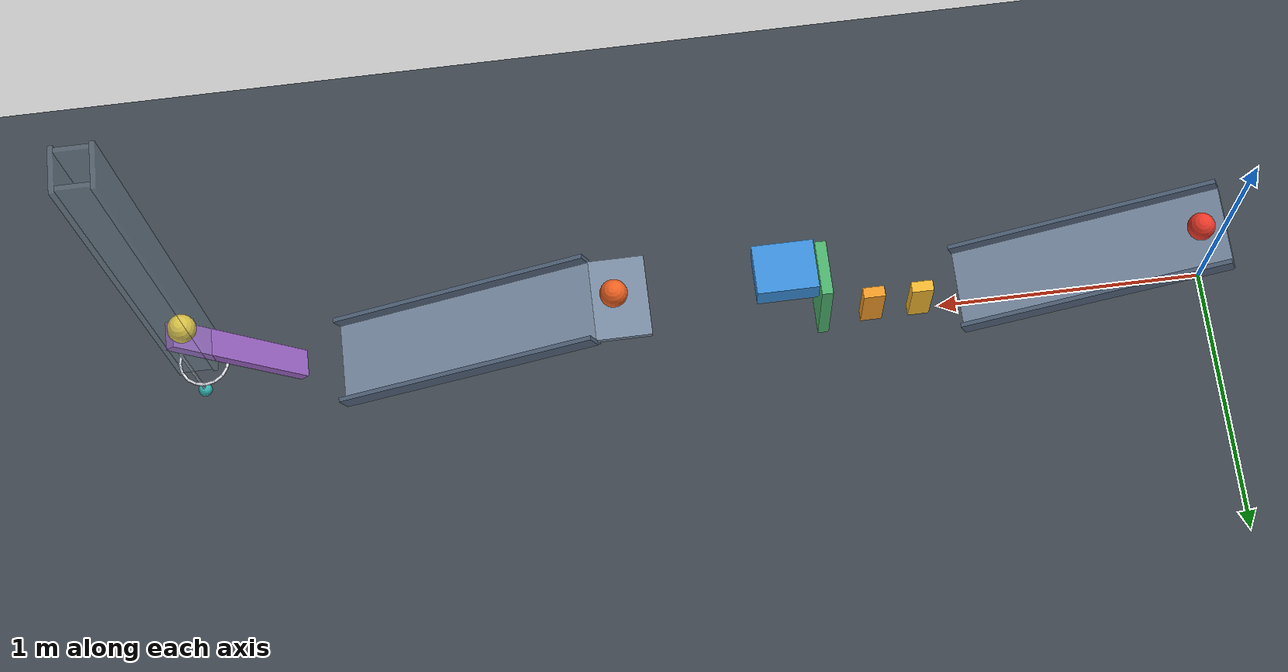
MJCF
<mujoco model="passive_chain_reaction">
  <compiler angle="degree" autolimits="true" inertiafromgeom="true"/>
  <option timestep="0.002" gravity="0 0 -9.81" integrator="implicitfast" solver="Newton" iterations="100" tolerance="1e-9"/>
  <size njmax="2000" nconmax="500"/>
  <statistic center="2 0 0.6" extent="4.5"/>

  <!-- MuJoCo has no exact restitution attribute. A damping ratio of 0.6901 approximates e = 0.05 for a linear impact. -->
  <!-- Friction components are sliding, torsional, and rolling. -->
  <!-- Positive flap rotation tips its upper end toward +x. Positive lever rotation lowers its left end. -->

  <worldbody>
    <light name="main_light" pos="1 -3 6" dir="0 0 -1" directional="true"/>
    <camera name="overview" pos="5 -7 4" xyaxes="0.919 0.394 0 -0.185 0.432 0.883"/>
    <geom name="floor" type="plane" size="8 4 0.1" friction="0.70 0.005 0.005" condim="6" solref="0.008 0.6901" rgba="0.24 0.27 0.30 1"/>

    <!-- Ramp surfaces run from z = 0.49202014 down to z = 0.15. -->
    <body name="ramp1" pos="0 0 0.49202014">
      <geom name="ramp1_surface" type="box" pos="0.46300591 0 -0.18980392" euler="0 20 0" size="0.50 0.15 0.02" friction="0.70 0.005 0.005" condim="6" solref="0.008 0.6901" rgba="0.48 0.55 0.64 1"/>
      <geom name="ramp1_left_rail" type="box" pos="0.47668671 0.155 -0.15221622" euler="0 20 0" size="0.50 0.008 0.035" friction="0.70 0.005 0.005" condim="6" solref="0.008 0.6901" rgba="0.32 0.39 0.48 1"/>
      <geom name="ramp1_right_rail" type="box" pos="0.47668671 -0.155 -0.15221622" euler="0 20 0" size="0.50 0.008 0.035" friction="0.70 0.005 0.005" condim="6" solref="0.008 0.6901" rgba="0.32 0.39 0.48 1"/>
    </body>

    <body name="ball1" pos="0.09227642 0 0.51164316">
      <freejoint name="ball1_free"/>
      <geom name="ball1_sphere" type="sphere" size="0.05" mass="0.20" friction="0.70 0.005 0.005" condim="6" solref="0.008 0.6901" rgba="0.92 0.22 0.16 1"/>
    </body>

    <body name="domino1" pos="1.07969262 0 0.12">
      <freejoint name="domino1_free"/>
      <geom name="domino1_block" type="box" size="0.04 0.02 0.12" mass="0.25" friction="0.70 0.005 0.005" condim="6" solref="0.008 0.6901" rgba="0.95 0.72 0.19 1"/>
    </body>

    <body name="domino2" pos="1.25969262 0 0.12">
      <freejoint name="domino2_free"/>
      <geom name="domino2_block" type="box" size="0.04 0.02 0.12" mass="0.25" friction="0.70 0.005 0.005" condim="6" solref="0.008 0.6901" rgba="0.95 0.61 0.15 1"/>
    </body>

    <!-- Bottom-hinged panel: the domino strikes its lower half, and gravity assists the ensuing swing. -->
    <body name="flap1" pos="1.45969262 0 0.15">
      <joint name="flap1_hinge" type="hinge" axis="0 1 0" range="0 65" damping="0.04" armature="0" solreflimit="0.004 1" solimplimit="0.99 0.999 0.0001"/>
      <geom name="flap1_panel" type="box" pos="0 0 0.20" size="0.02 0.10 0.20" mass="0.30" friction="0.70 0.005 0.005" condim="6" solref="0.008 0.6901" rgba="0.30 0.70 0.43 1"/>
    </body>

    <!-- The slide is an ideal horizontal rail; the cart clears the second ramp's starting shelf. -->
    <body name="cart1" pos="1.59969262 0 0.555">
      <joint name="cart1_slide" type="slide" axis="1 0 0" range="0 0.68" damping="0.20" armature="0" solreflimit="0.004 1" solimplimit="0.99 0.999 0.0001"/>
      <geom name="cart1_chassis" type="box" size="0.11 0.09 0.05" mass="0.50" friction="0.70 0.005 0.005" condim="6" solref="0.008 0.6901" rgba="0.23 0.56 0.86 1"/>
    </body>

    <!-- A level starting shelf keeps ball2 stationary until cart1 arrives. -->
    <body name="ramp2" pos="2.28969262 0 0.49202014">
      <geom name="ramp2_surface" type="box" pos="0.46300591 0 -0.18980392" euler="0 20 0" size="0.50 0.15 0.02" friction="0.70 0.005 0.005" condim="6" solref="0.008 0.6901" rgba="0.48 0.55 0.64 1"/>
      <geom name="ramp2_start_shelf" type="box" pos="-0.10 0 -0.01" size="0.10 0.15 0.01" friction="0.70 0.005 0.005" condim="6" solref="0.008 0.6901" rgba="0.48 0.55 0.64 1"/>
      <geom name="ramp2_left_rail" type="box" pos="0.47668671 0.155 -0.15221622" euler="0 20 0" size="0.50 0.008 0.035" friction="0.70 0.005 0.005" condim="6" solref="0.008 0.6901" rgba="0.32 0.39 0.48 1"/>
      <geom name="ramp2_right_rail" type="box" pos="0.47668671 -0.155 -0.15221622" euler="0 20 0" size="0.50 0.008 0.035" friction="0.70 0.005 0.005" condim="6" solref="0.008 0.6901" rgba="0.32 0.39 0.48 1"/>
    </body>

    <body name="ball2" pos="2.20969262 0 0.54202014">
      <freejoint name="ball2_free"/>
      <geom name="ball2_sphere" type="sphere" size="0.05" mass="0.20" friction="0.70 0.005 0.005" condim="6" solref="0.008 0.6901" rgba="0.93 0.38 0.13 1"/>
    </body>

    <!-- The lever begins inclined at 50 degrees and has a further 45 degrees of travel. -->
    <!-- This keeps its lowered left end above the floor and its carried ball above the ring and bob. -->
    <body name="lever1" pos="3.55754241 0 0.41981333" euler="0 -50 0">
      <joint name="lever1_hinge" type="hinge" axis="0 -1 0" range="0 45" damping="0.04" armature="0" solreflimit="0.004 1" solimplimit="0.99 0.999 0.0001"/>
      <geom name="lever1_beam" type="box" size="0.30 0.05 0.02" mass="0.50" friction="0.70 0.005 0.005" condim="6" solref="0.008 0.6901" rgba="0.61 0.39 0.77 1"/>
    </body>

    <body name="ball3" pos="3.69675558 0 0.69462180">
      <freejoint name="ball3_free"/>
      <geom name="ball3_sphere" type="sphere" size="0.05" mass="0.20" contype="1" conaffinity="3" friction="0.70 0.005 0.005" condim="6" solref="0.008 0.6901" rgba="0.96 0.82 0.22 1"/>
    </body>

    <!-- Passive guide walls constrain only ball3, converting the lever's thrust into vertical travel. -->
    <!-- They end 0.10 m above the ring, leaving the ring crossing and pendulum impact unobstructed. -->
    <body name="ball3_guide" pos="3.69675558 0 1.24962180">
      <geom name="ball3_guide_left" type="box" pos="-0.060 0 0" size="0.008 0.075 0.805" contype="2" conaffinity="0" friction="0.70 0.005 0.005" condim="6" solref="0.008 0.6901" rgba="0.65 0.79 0.88 0.20"/>
      <geom name="ball3_guide_right" type="box" pos="0.060 0 0" size="0.008 0.075 0.805" contype="2" conaffinity="0" friction="0.70 0.005 0.005" condim="6" solref="0.008 0.6901" rgba="0.65 0.79 0.88 0.20"/>
      <geom name="ball3_guide_front" type="box" pos="0 -0.060 0" size="0.052 0.008 0.805" contype="2" conaffinity="0" friction="0.70 0.005 0.005" condim="6" solref="0.008 0.6901" rgba="0.65 0.79 0.88 0.20"/>
      <geom name="ball3_guide_back" type="box" pos="0 0.060 0" size="0.052 0.008 0.805" contype="2" conaffinity="0" friction="0.70 0.005 0.005" condim="6" solref="0.008 0.6901" rgba="0.65 0.79 0.88 0.20"/>
    </body>

    <!-- Sixteen capsules form a horizontal ring with a 0.16 m clear inscribed diameter. -->
    <body name="ring1" pos="3.69675558 0 0.34462180">
      <geom name="ring1_segment01" type="capsule" fromto="0.086666 0 0 0.080069 0.033167 0" size="0.005" friction="0.70 0.005 0.005" condim="6" solref="0.008 0.6901" rgba="0.88 0.88 0.92 1"/>
      <geom name="ring1_segment02" type="capsule" fromto="0.080069 0.033167 0 0.061282 0.061282 0" size="0.005" friction="0.70 0.005 0.005" condim="6" solref="0.008 0.6901" rgba="0.88 0.88 0.92 1"/>
      <geom name="ring1_segment03" type="capsule" fromto="0.061282 0.061282 0 0.033167 0.080069 0" size="0.005" friction="0.70 0.005 0.005" condim="6" solref="0.008 0.6901" rgba="0.88 0.88 0.92 1"/>
      <geom name="ring1_segment04" type="capsule" fromto="0.033167 0.080069 0 0 0.086666 0" size="0.005" friction="0.70 0.005 0.005" condim="6" solref="0.008 0.6901" rgba="0.88 0.88 0.92 1"/>
      <geom name="ring1_segment05" type="capsule" fromto="0 0.086666 0 -0.033167 0.080069 0" size="0.005" friction="0.70 0.005 0.005" condim="6" solref="0.008 0.6901" rgba="0.88 0.88 0.92 1"/>
      <geom name="ring1_segment06" type="capsule" fromto="-0.033167 0.080069 0 -0.061282 0.061282 0" size="0.005" friction="0.70 0.005 0.005" condim="6" solref="0.008 0.6901" rgba="0.88 0.88 0.92 1"/>
      <geom name="ring1_segment07" type="capsule" fromto="-0.061282 0.061282 0 -0.080069 0.033167 0" size="0.005" friction="0.70 0.005 0.005" condim="6" solref="0.008 0.6901" rgba="0.88 0.88 0.92 1"/>
      <geom name="ring1_segment08" type="capsule" fromto="-0.080069 0.033167 0 -0.086666 0 0" size="0.005" friction="0.70 0.005 0.005" condim="6" solref="0.008 0.6901" rgba="0.88 0.88 0.92 1"/>
      <geom name="ring1_segment09" type="capsule" fromto="-0.086666 0 0 -0.080069 -0.033167 0" size="0.005" friction="0.70 0.005 0.005" condim="6" solref="0.008 0.6901" rgba="0.88 0.88 0.92 1"/>
      <geom name="ring1_segment10" type="capsule" fromto="-0.080069 -0.033167 0 -0.061282 -0.061282 0" size="0.005" friction="0.70 0.005 0.005" condim="6" solref="0.008 0.6901" rgba="0.88 0.88 0.92 1"/>
      <geom name="ring1_segment11" type="capsule" fromto="-0.061282 -0.061282 0 -0.033167 -0.080069 0" size="0.005" friction="0.70 0.005 0.005" condim="6" solref="0.008 0.6901" rgba="0.88 0.88 0.92 1"/>
      <geom name="ring1_segment12" type="capsule" fromto="-0.033167 -0.080069 0 0 -0.086666 0" size="0.005" friction="0.70 0.005 0.005" condim="6" solref="0.008 0.6901" rgba="0.88 0.88 0.92 1"/>
      <geom name="ring1_segment13" type="capsule" fromto="0 -0.086666 0 0.033167 -0.080069 0" size="0.005" friction="0.70 0.005 0.005" condim="6" solref="0.008 0.6901" rgba="0.88 0.88 0.92 1"/>
      <geom name="ring1_segment14" type="capsule" fromto="0.033167 -0.080069 0 0.061282 -0.061282 0" size="0.005" friction="0.70 0.005 0.005" condim="6" solref="0.008 0.6901" rgba="0.88 0.88 0.92 1"/>
      <geom name="ring1_segment15" type="capsule" fromto="0.061282 -0.061282 0 0.080069 -0.033167 0" size="0.005" friction="0.70 0.005 0.005" condim="6" solref="0.008 0.6901" rgba="0.88 0.88 0.92 1"/>
      <geom name="ring1_segment16" type="capsule" fromto="0.080069 -0.033167 0 0.086666 0 0" size="0.005" friction="0.70 0.005 0.005" condim="6" solref="0.008 0.6901" rgba="0.88 0.88 0.92 1"/>
    </body>

    <!-- The bob is offset 0.06 m from the fall axis so ball3 misses the vertical rod and strikes the bob obliquely. -->
    <!-- At nominal contact, ball3's center is 0.25 m below the ring center. -->
    <body name="pendulum1" pos="3.75675558 0 0.54962180">
      <joint name="pendulum1_hinge" type="hinge" axis="0 1 0" damping="0.04" armature="0"/>
      <geom name="pendulum1_rod" type="capsule" fromto="0 0 0 0 0 -0.50" size="0.005" mass="0.03" friction="0.70 0.005 0.005" condim="6" solref="0.008 0.6901" rgba="0.68 0.72 0.77 1"/>
      <geom name="pendulum1_bob" type="sphere" pos="0 0 -0.50" size="0.025" mass="0.32" friction="0.70 0.005 0.005" condim="6" solref="0.008 0.6901" rgba="0.21 0.73 0.72 1"/>
    </body>
  </worldbody>

  <keyframe>
    <key name="start" time="0"/>
  </keyframe>
</mujoco>
